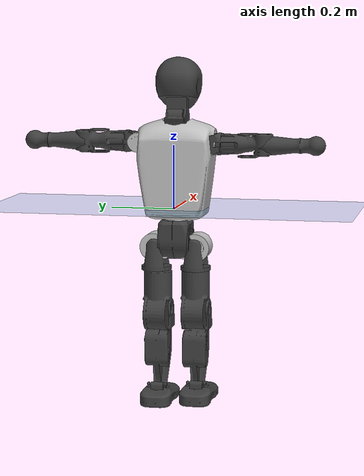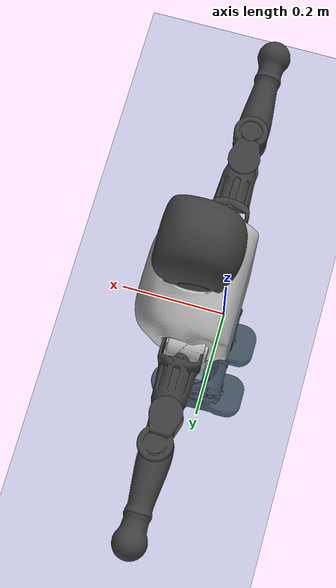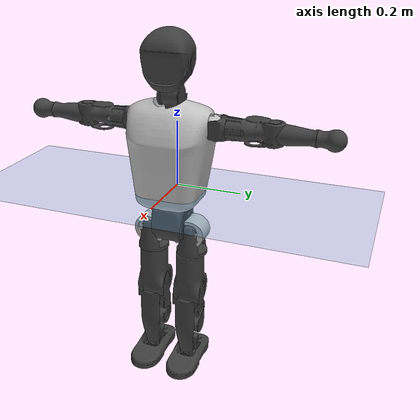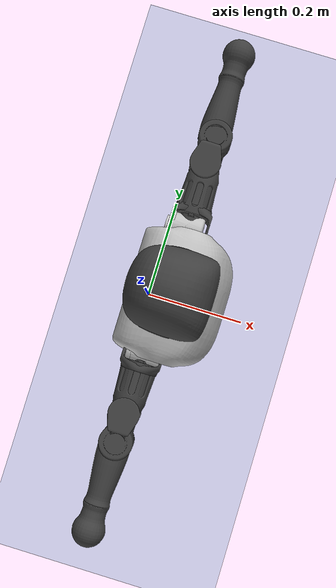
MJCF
<mujoco model="T1">
  <compiler angle="radian" assetdir="assets" balanceinertia="true" inertiafromgeom="false"/>

  <option timestep="0.005" density="1.2" viscosity="2e-05"/>

  <size nkey="1"/>

  <visual>
    <quality shadowsize="8192"/>
    <map shadowclip="0.5"/>
  </visual>

  <default>
    <default class="/">
      <joint armature="0.01" damping="0.01" frictionloss="0.1"/>
      <geom contype="0" conaffinity="0" group="1" solref="-1000 -80"/>
      <site size="0.01 0.005 0.005" group="5"/>
      <general forcelimited="true" biastype="affine" gainprm="25" biasprm="0 -25 -0.6"/>
      <default class="t1">
        <geom rgba="0.25 0.25 0.25 1"/>
        <default class="visual">
          <geom type="mesh" group="2"/>
        </default>
        <default class="collision">
          <geom group="3"/>
        </default>
        <default class="foot">
          <geom size="0.1115 0.05 0.015" type="box" condim="6" group="4" priority="1" solimp="0.015 1 0.015"/>
        </default>
        <default class="reward_collision_sphere">
          <geom group="5" rgba="1 0 0 1"/>
        </default>
      </default>
    </default>
  </default>

  <asset>
    <texture type="skybox" colorspace="auto" name="//unnamed_texture_0" builtin="gradient" rgb1="0.95 0.95 0.95" rgb2="0.95 0.95 0.95" width="100" height="600"/>
    <texture type="2d" colorspace="auto" name="texplane" builtin="checker" rgb1="0.345 0.575 0.748" rgb2="0.345 0.575 0.748" markrgb="1 1 1" width="512" height="512"/>
    <material name="MatPlane" class="/" texture="texplane" texuniform="true" texrepeat="2 2" specular="0.9"/>
    <mesh name="Trunk" class="/" file="Trunk.stl"/>
    <mesh name="H1" class="/" file="H1.stl"/>
    <mesh name="H2" class="/" file="H2.stl"/>
    <mesh name="AL1" class="/" file="AL1.stl"/>
    <mesh name="AL2" class="/" file="AL2.stl"/>
    <mesh name="AL3" class="/" file="AL3.stl"/>
    <mesh name="left_hand_link" class="/" file="left_hand_link.stl"/>
    <mesh name="AR1" class="/" file="AR1.stl"/>
    <mesh name="AR2" class="/" file="AR2.stl"/>
    <mesh name="AR3" class="/" file="AR3.stl"/>
    <mesh name="right_hand_link" class="/" file="right_hand_link.stl"/>
    <mesh name="Waist" class="/" file="Waist.stl"/>
    <mesh name="Hip_Pitch_Left" class="/" file="Hip_Pitch_Left.stl"/>
    <mesh name="Hip_Roll_Left" class="/" file="Hip_Roll_Left.stl"/>
    <mesh name="Hip_Yaw_Left" class="/" file="Hip_Yaw_Left.stl"/>
    <mesh name="Shank_Left" class="/" file="Shank_Left.stl"/>
    <mesh name="Ankle_Cross_Left" class="/" file="Ankle_Cross_Left.stl"/>
    <mesh name="left_foot_link" class="/" file="left_foot_link.stl"/>
    <mesh name="Hip_Pitch_Right" class="/" file="Hip_Pitch_Right.stl"/>
    <mesh name="Hip_Roll_Right" class="/" file="Hip_Roll_Right.stl"/>
    <mesh name="Hip_Yaw_Right" class="/" file="Hip_Yaw_Right.stl"/>
    <mesh name="Shank_Right" class="/" file="Shank_Right.stl"/>
    <mesh name="Ankle_Cross_Right" class="/" file="Ankle_Cross_Right.stl"/>
    <mesh name="right_foot_link" class="/" file="right_foot_link.stl"/>
  </asset>

  <worldbody>
    <geom name="floor" class="/" size="100 100 0.125" type="plane" group="0" material="MatPlane"/>
    <light name="toplight_shadow" class="/" pos="0 0 5" dir="0.0990148 0.0990148 -0.990148" type="directional" ambient="0.04 0.04 0.04" diffuse="0.55 0.55 0.55" specular="0.12 0.12 0.12"/>
    <light name="toplight_fill" class="/" pos="0 0 5" dir="0.0990148 0.0990148 -0.990148" type="directional" castshadow="false" ambient="0.04 0.04 0.04" diffuse="0.3 0.3 0.3" specular="0.08 0.08 0.08"/>
    <body name="trunk" childclass="t1" pos="-0.00112251 -0.000508168 -0.000209507" quat="0.999998 -0.00104567 -0.00153955 -0.00118371">
      <inertial pos="0.0387944 0.00233076 0.0956495" quat="0.999924 -0.000866108 -0.00985887 -0.00731524" mass="5.05116" diaginertia="0.0122879 0.00896707 0.0394438"/>
      <joint name="//unnamed_joint_0" type="free" armature="0" damping="0" frictionloss="0"/>
      <geom name="//unnamed_geom_1" class="visual" rgba="0.76 0.76 0.76 1" mesh="Trunk"/>
      <geom name="//unnamed_geom_2" class="collision" size="0.0559548 0.0746065 0.11191" pos="0.0402694 0 0.110136" type="box"/>
      <geom name="//unnamed_geom_3" class="reward_collision_sphere" size="0.0857974" pos="0.0402694 0 0.0917798"/>
      <geom name="//unnamed_geom_4" class="reward_collision_sphere" size="0.011191" pos="0.0402694 0.0551854 0"/>
      <geom name="//unnamed_geom_5" class="reward_collision_sphere" size="0.011191" pos="0.0402694 -0.0551854 0"/>
      <geom name="//unnamed_geom_6" class="reward_collision_sphere" size="0.011191" pos="0.0402694 0.0694687 0.165204"/>
      <geom name="//unnamed_geom_7" class="reward_collision_sphere" size="0.011191" pos="0.0402694 -0.0694687 0.165204"/>
      <site name="imu" pos="-0.00637268 0.0119923 0.00649741" size="0.00746065"/>
      <camera name="track" pos="0 -1.29848 0" quat="0.707107 0.707107 0 0" mode="trackcom"/>
      <camera name="ego_camera" pos="0.081881 0 0.385475" quat="-0.5 -0.5 0.5 0.5"/>
      <body name="H1" pos="0.0393843 0.000446332 0.225832" quat="1 -5.72829e-05 0.000529508 -0.00029309">
        <inertial pos="-0.000933033 -0.00623685 0.0535232" quat="0.760806 -0.0309679 -0.00856868 0.648183" mass="0.194674" diaginertia="3.49034e-05 2.83735e-05 0.000106554"/>
        <joint name="AAHead_yaw" pos="0 0 0" axis="-0.0116231 0.0181438 0.999768" range="-1.61063 1.52631" armature="0.00768383" damping="0.0119205" frictionloss="0.0775557"/>
        <geom name="//unnamed_geom_8" class="visual" mesh="H1"/>
        <body name="H2" pos="-0.00198763 -0.00461813 0.0586705" quat="0.999999 -0.000943259 0.000903733 0.000190919">
          <inertial pos="0.00103729 -0.0032087 0.0898542" quat="0.987026 0.109908 -0.0752391 -0.0896597" mass="0.253875" diaginertia="0.000260077 0.000222973 0.00109098"/>
          <joint name="Head_pitch" pos="0 0 0" axis="-0.0057251 -0.99998 0.00254861" range="-1.22942 0.345047" armature="0.00919986" damping="0.00271524" frictionloss="0.0510672"/>
          <geom name="//unnamed_geom_9" class="visual" mesh="H2"/>
          <geom name="//unnamed_geom_10" class="collision" size="0.0596852" pos="0.00671156 0 0.100958"/>
          <geom name="//unnamed_geom_11" class="reward_collision_sphere" size="0.0671458" pos="0.0134231 0 0.0917798"/>
        </body>
      </body>
      <body name="AL1" pos="0.0388076 0.0749112 0.205983" quat="1 -0.000244057 0.000476359 0.000132619">
        <inertial pos="0.0040299 0.0311374 -0.00338978" quat="0.503281 0.50124 -0.507131 0.488145" mass="0.213698" diaginertia="0.000179837 0.000145216 0.00018928"/>
        <joint name="Left_Shoulder_Pitch" pos="0 0 0" axis="0.0191445 0.999716 -0.0142056" stiffness="0.00829516" range="-3.3062 1.21258" armature="0.00655202" damping="0.00605739" frictionloss="0.0728255"/>
        <geom name="//unnamed_geom_12" class="visual" rgba="0.76 0.76 0.76 1" mesh="AL1"/>
        <body name="AL2" pos="0.00481663 0.0355889 0.00130535" quat="1 -1.38932e-06 7.5645e-06 -3.24335e-05">
          <inertial pos="0.00295314 0.0243309 0.00300471" quat="0.492785 0.505881 -0.483121 0.517534" mass="0.0705188" diaginertia="5.50702e-05 3.99045e-05 0.000118257"/>
          <joint name="Left_Shoulder_Roll" pos="0 0 0" axis="-0.99999 -0.00102333 -0.00427254" range="-1.58451 1.78823" armature="0.00755618" damping="0.00780833" frictionloss="0.0764631"/>
          <geom name="//unnamed_geom_13" class="visual" mesh="AL2"/>
          <body name="AL3" pos="-0.000668044 0.0393998 0.00122189" quat="1 -0.000427823 0.000121435 -0.000316251">
            <inertial pos="-4.47518e-05 0.0548248 0.00115609" quat="0.719785 0.694024 -0.0124006 0.00927116" mass="0.409141" diaginertia="0.00171256 0.00141988 0.000422635"/>
            <joint name="Left_Elbow_Pitch" pos="0 0 0" axis="0.0001086 -0.999985 0.00553702" range="-2.31232 2.21793" armature="0.00727104" damping="0" frictionloss="0.0550162"/>
            <geom name="//unnamed_geom_14" class="visual" mesh="AL3"/>
            <geom name="//unnamed_geom_15" class="collision" size="0.0223819 0.0559548" pos="0 0.032462 0" quat="0.707105 0.707108 0 0" type="cylinder"/>
            <geom name="//unnamed_geom_16" class="reward_collision_sphere" size="0.0268583"/>
            <body name="left_hand_link" pos="-0.00342528 0.0947701 -0.000762094" quat="0.999999 -9.30727e-05 -0.00101168 -0.000588918">
              <inertial pos="-0.00366749 0.0724362 0.00366291" quat="0.713383 0.700752 0.00432169 -0.00337143" mass="0.136356" diaginertia="0.00112571 0.000898236 0.000135776"/>
              <joint name="Left_Elbow_Yaw" pos="0 0 0" axis="0.00225399 0.00700609 0.999973" range="-2.44911 -0.0481426" armature="0.00719965" damping="0.0119579" frictionloss="0.0738205"/>
              <geom name="//unnamed_geom_17" class="visual" mesh="left_hand_link"/>
              <geom name="//unnamed_geom_18" class="collision" size="0.0223819 0.0652806" pos="0 0.0844012 0" quat="0.707105 0.707108 0 0" type="cylinder"/>
              <geom name="//unnamed_geom_19" class="reward_collision_sphere" size="0.0373032"/>
              <geom name="//unnamed_geom_20" class="reward_collision_sphere" size="0.0261123" pos="0 0.0714164 0"/>
              <geom name="//unnamed_geom_21" class="reward_collision_sphere" size="0.0261123" pos="0 0.139587 0"/>
            </body>
          </body>
        </body>
      </body>
      <body name="AR1" pos="0.0348589 -0.0638477 0.199201" quat="0.999996 -0.0021464 -0.000969219 -0.00180911">
        <inertial pos="-0.000634817 -0.0307545 0.00115312" quat="0.503867 0.495952 -0.50402 0.496098" mass="0.205766" diaginertia="0.00017925 0.000137382 0.000180561"/>
        <joint name="Right_Shoulder_Pitch" pos="0 0 0" axis="0.0144195 -0.999895 0.00136354" range="-1.23616 3.29332" armature="0.00677967" damping="0" frictionloss="0.070762"/>
        <geom name="//unnamed_geom_22" class="visual" rgba="0.76 0.76 0.76 1" mesh="AR1"/>
        <body name="AR2" pos="-0.00105729 -0.0269058 0.00464292" quat="0.999999 0.000368525 -0.000759581 0.00100443">
          <inertial pos="0.00097558 -0.0232962 -0.000683757" quat="0.510251 0.483302 -0.514249 0.491539" mass="0.067589" diaginertia="5.52094e-05 4.0618e-05 0.000117759"/>
          <joint name="Right_Shoulder_Roll" pos="0 0 0" axis="-0.999851 -0.0172061 -0.0012114" stiffness="0.00105364" range="-1.75425 1.55836" armature="0.00756426" damping="0.0176863" frictionloss="0.0661888"/>
          <geom name="//unnamed_geom_23" class="visual" mesh="AR2"/>
          <body name="AR3" pos="-4.55024e-05 -0.0394366 -0.000665253" quat="0.999998 -0.0015138 -0.00029746 0.0007943">
            <inertial pos="-0.00636393 -0.0540826 0.00174351" quat="0.703184 0.710933 0.00983687 0.00327262" mass="0.417112" diaginertia="0.00166216 0.00134423 0.000374652"/>
            <joint name="Right_Elbow_Pitch" pos="0 0 0" axis="-0.000341199 1 0.000288044" range="-2.29926 2.40302" armature="0.00736503" damping="0.00497131" frictionloss="0.0768413"/>
            <geom name="//unnamed_geom_24" class="visual" mesh="AR3"/>
            <geom name="//unnamed_geom_25" class="collision" size="0.0223819 0.0559548" pos="0 -0.032462 0" quat="0.707105 0.707108 0 0" type="cylinder"/>
            <geom name="//unnamed_geom_26" class="reward_collision_sphere" size="0.0268583"/>
            <body name="right_hand_link" pos="-0.00120595 -0.0945917 -0.00397446" quat="0.999999 -0.00111297 0.000811961 9.18727e-05">
              <inertial pos="-0.00538338 -0.0692572 0.00443265" quat="0.705128 0.709076 -0.00127138 0.00205093" mass="0.149789" diaginertia="0.00128973 0.00101698 0.000141885"/>
              <joint name="Right_Elbow_Yaw" pos="0 0 0" axis="0.00721483 0.00632096 0.999954" range="0.00632256 2.50984" armature="0.00692734" damping="0.0158397" frictionloss="0.0716844"/>
              <geom name="//unnamed_geom_27" class="visual" mesh="right_hand_link"/>
              <geom name="//unnamed_geom_28" class="collision" size="0.0223819 0.0652806" pos="0 -0.0844012 0" quat="0.707105 0.707108 0 0" type="cylinder"/>
              <geom name="//unnamed_geom_29" class="reward_collision_sphere" size="0.0373032"/>
              <geom name="//unnamed_geom_30" class="reward_collision_sphere" size="0.0261123" pos="0 -0.0714164 0"/>
              <geom name="//unnamed_geom_31" class="reward_collision_sphere" size="0.0261123" pos="0 -0.139587 0"/>
            </body>
          </body>
        </body>
      </body>
      <body name="Waist" pos="0.0464306 0.00356739 -0.105383" quat="1 -6.66873e-07 7.73679e-06 1.0284e-05">
        <inertial pos="0.00525254 -0.00247686 0.00462001" quat="0.98445 -0.00212379 -0.175611 -0.0037492" mass="1.11687" diaginertia="0.000716204 0.000614647 0.00318754"/>
        <joint name="Waist" pos="0 0 0" axis="0.00597731 -0.00658044 0.99996" range="-1.58761 1.54476" armature="0.0081383" damping="0.0299694" frictionloss="0.0739108"/>
        <geom name="//unnamed_geom_32" class="visual" mesh="Waist"/>
        <body name="Hip_Pitch_Left" pos="7.3743e-05 0.06623 0.000287859" quat="1 -0.000209201 1.05773e-05 0.000111236">
          <inertial pos="-0.000234367 -0.0034656 -0.0128167" quat="0.973484 0.227896 0.0197852 0.000467523" mass="0.429812" diaginertia="0.000242885 0.000167484 0.000805201"/>
          <joint name="Left_Hip_Pitch" pos="0 0 0" axis="0.00440255 0.99998 0.00456703" range="-1.75446 1.50318" armature="0.00662194" damping="0.0151005" frictionloss="0.0758503"/>
          <geom name="//unnamed_geom_33" class="visual" rgba="0.76 0.76 0.76 1" mesh="Hip_Pitch_Left"/>
          <body name="Hip_Roll_Left" pos="-0.00424488 -0.00397255 -0.0174108" quat="0.999999 0.000566678 0.000698143 0.00080511">
            <inertial pos="-0.00139513 -0.00072122 -0.0463816" quat="0.702108 -0.0147673 -0.00703044 0.711883" mass="0.154649" diaginertia="0.000219715 0.000174748 0.000339092"/>
            <joint name="Left_Hip_Roll" pos="0 0 0" axis="-0.99998 -0.0030364 -0.00554739" stiffness="0.0184883" range="-1.59302 0.11239" armature="0.00845822" damping="0.0162296" frictionloss="0.0826821"/>
            <geom name="//unnamed_geom_34" class="visual" mesh="Hip_Roll_Left"/>
            <geom name="//unnamed_geom_35" class="reward_collision_sphere" size="0.0410335"/>
            <body name="Hip_Yaw_Left" pos="-1.09335e-05 -0.00512968 -0.0823106" quat="1 -0.000225571 0.000312362 -0.000481895">
              <inertial pos="-0.00492833 -0.000684751 -0.0801644" quat="0.696991 -0.0252803 -0.017863 0.716412" mass="0.93214" diaginertia="0.00361169 0.00312596 0.00171132"/>
              <joint name="Left_Hip_Yaw" pos="0 0 0" axis="0.00248485 0.00251682 -0.999994" range="-1.07014 0.878284" armature="0.00738492" damping="0.0404674" frictionloss="0.0718911"/>
              <geom name="//unnamed_geom_36" class="visual" mesh="Hip_Yaw_Left"/>
              <geom name="//unnamed_geom_37" class="collision" size="0.0373032 0.0596852" type="cylinder"/>
              <body name="Shank_Left" pos="-0.00788246 -0.00350368 -0.118982" quat="1 -9.4106e-05 -0.000174658 4.77264e-06">
                <inertial pos="-0.00403987 0.000944774 -0.111176" quat="0.996807 -0.00538553 -0.0273675 0.0748199" mass="0.690892" diaginertia="0.00458596 0.00394671 0.00123226"/>
                <joint name="Left_Knee_Pitch" pos="0 0 0" axis="-0.0124466 0.999922 -0.000572576" range="-0.0012885 2.32341" armature="0.00768737" damping="0" frictionloss="0.0667685"/>
                <geom name="//unnamed_geom_38" class="visual" mesh="Shank_Left"/>
                <geom name="//unnamed_geom_39" class="collision" size="0.0373032 0.0559548" pos="0 0 -0.110136" type="cylinder"/>
                <geom name="//unnamed_geom_40" class="reward_collision_sphere" size="0.0484942"/>
                <body name="Ankle_Cross_Left" pos="-0.00312437 -0.00340098 -0.254632" quat="0.999999 0.00085013 0.000435877 0.00088841">
                  <inertial pos="0.00194087 -0.00436784 -0.00800406" quat="0.445823 0.551473 0.550109 0.44102" mass="0.0307253" diaginertia="3.92789e-06 3.1148e-06 7.36223e-06"/>
                  <joint name="Left_Ankle_Pitch" pos="0 0 0" axis="-0.0131922 0.999913 0.00048724" stiffness="0.00139616" range="-0.85595 0.3971" armature="0.00891356" damping="0.0152865" frictionloss="0.074138"/>
                  <geom name="//unnamed_geom_41" class="visual" mesh="Ankle_Cross_Left"/>
                  <body name="left_foot_link" pos="-0.00231934 -0.000508763 -0.0150999" quat="0.999996 0.000596628 -0.000964874 0.0024552">
                    <inertial pos="0.004128 0.000285557 -0.00980628" quat="-0.000413037 0.621281 6.12649e-05 0.783588" mass="0.280839" diaginertia="0.000359782 0.000277863 0.00135208"/>
                    <joint name="Left_Ankle_Roll" pos="0 0 0" axis="-0.999983 0.00167102 -0.0055389" stiffness="0.0139646" range="-0.363858 0.53066" armature="0.00751182" damping="0" frictionloss="0.0903996"/>
                    <geom name="//unnamed_geom_42" class="visual" mesh="left_foot_link"/>
                    <geom name="left_foot" class="foot" size="0.0944541 0.0378539 0.0101284" pos="0.00671156 0 -0.013767"/>
                    <geom name="//unnamed_geom_44" class="reward_collision_sphere" size="0.0387954" pos="0.00671156 0 -0.013767"/>
                    <geom name="//unnamed_geom_45" class="reward_collision_sphere" size="0.0223819" pos="0.0637598 -0.0149325 -0.013767"/>
                    <geom name="//unnamed_geom_46" class="reward_collision_sphere" size="0.0223819" pos="-0.0469809 -0.0149325 -0.013767"/>
                    <site name="left_foot" class="foot" pos="0.00671156 0 -0.013767" size="0.00746065"/>
                  </body>
                </body>
              </body>
            </body>
          </body>
        </body>
        <body name="Hip_Pitch_Right" pos="0.00558563 -0.0672905 -0.000456085" quat="0.999998 0.00103052 -8.85866e-05 -0.00149196">
          <inertial pos="0.00127837 0.00676335 -0.0169146" quat="0.973948 -0.225435 0.0213166 -0.0122513" mass="0.426753" diaginertia="0.000235733 0.000168704 0.000766944"/>
          <joint name="Right_Hip_Pitch" pos="0 0 0" axis="0.00471353 -0.999974 0.00538982" range="-1.60116 1.82965" armature="0.00699082" damping="0.0133165" frictionloss="0.0701361"/>
          <geom name="//unnamed_geom_47" class="visual" rgba="0.76 0.76 0.76 1" mesh="Hip_Pitch_Right"/>
          <body name="Hip_Roll_Right" pos="-0.00470166 0.00328688 -0.0159062" quat="1 -0.000152832 -2.88235e-05 0.000149336">
            <inertial pos="0.00225559 0.00127746 -0.0506854" quat="0.71018 -0.010288 -0.0049294 0.703927" mass="0.150752" diaginertia="0.000236811 0.000170155 0.000335124"/>
            <joint name="Right_Hip_Roll" pos="0 0 0" axis="-0.999967 0.00795217 0.00191119" range="-0.198742 1.68096" armature="0.0084807" damping="0.0285275" frictionloss="0.093045"/>
            <geom name="//unnamed_geom_48" class="visual" mesh="Hip_Roll_Right"/>
            <geom name="//unnamed_geom_49" class="reward_collision_sphere" size="0.0410335"/>
            <body name="Hip_Yaw_Right" pos="-0.00414474 -0.000912892 -0.0766059" quat="1 -0.000175247 -0.000510847 0.000653935">
              <inertial pos="-0.00709478 0.000830169 -0.0829194" quat="0.727541 -0.0445187 -0.0128978 0.684497" mass="0.912677" diaginertia="0.00373236 0.00290416 0.00179348"/>
              <joint name="Right_Hip_Yaw" pos="0 0 0" axis="0.022381 0.0208462 -0.999532" range="-1.00593 0.995494" armature="0.00835476" damping="0" frictionloss="0.0815489"/>
              <geom name="//unnamed_geom_50" class="visual" mesh="Hip_Yaw_Right"/>
              <geom name="//unnamed_geom_51" class="collision" size="0.0373032 0.0596852" type="cylinder"/>
              <body name="Shank_Right" pos="-0.0137233 -0.00440968 -0.123418" quat="1 0.000111407 0.000213521 1.63977e-06">
                <inertial pos="-0.00401564 0.00227662 -0.110792" quat="0.998529 0.0190612 -0.034277 -0.0374419" mass="0.720812" diaginertia="0.00456519 0.00398565 0.00124969"/>
                <joint name="Right_Knee_Pitch" pos="0 0 0" axis="0.0181123 -0.999799 -0.00864394" stiffness="0.0247062" range="-2.32388 -0.0232824" armature="0.00732618" damping="0" frictionloss="0.0692216"/>
                <geom name="//unnamed_geom_52" class="visual" mesh="Shank_Right"/>
                <geom name="//unnamed_geom_53" class="collision" size="0.0373032 0.0559548" pos="0 0 -0.110136" type="cylinder"/>
                <geom name="//unnamed_geom_54" class="reward_collision_sphere" size="0.0484942"/>
                <body name="Ankle_Cross_Right" pos="0.00343488 -0.00361596 -0.252722" quat="0.999999 0.00144685 -0.000670662 0.000483007">
                  <inertial pos="-0.00471068 -0.00225114 -0.00794688" quat="0.442052 0.551744 0.551361 0.442911" mass="0.0300637" diaginertia="4.2802e-06 2.98779e-06 7.58471e-06"/>
                  <joint name="Right_Ankle_Pitch" pos="0 0 0" axis="0.000971304 -0.999977 -0.00671316" stiffness="0.00348982" range="-0.221944 0.858646" armature="0.00823103" damping="0.00514304" frictionloss="0.0656775"/>
                  <geom name="//unnamed_geom_55" class="visual" mesh="Ankle_Cross_Right"/>
                  <body name="right_foot_link" pos="-0.00150647 -0.00413424 -0.0109202" quat="1 0.000210991 0.00010917 0.000143797">
                    <inertial pos="-4.02237e-05 -0.00232939 -0.00904254" quat="0.000206762 0.618446 3.47183e-05 0.785827" mass="0.252275" diaginertia="0.000344358 0.000263363 0.00140655"/>
                    <joint name="Right_Ankle_Roll" pos="0 0 0" axis="-0.999942 0.00250443 0.0104813" range="-0.487987 0.440361" armature="0.00801842" damping="0.00850937" frictionloss="0.0944519"/>
                    <geom name="//unnamed_geom_56" class="visual" mesh="right_foot_link"/>
                    <geom name="right_foot" class="foot" size="0.0939732 0.0421129 0.0105389" pos="0.00671156 0 -0.013767"/>
                    <geom name="//unnamed_geom_58" class="reward_collision_sphere" size="0.0298426"/>
                    <geom name="//unnamed_geom_59" class="reward_collision_sphere" size="0.0223819" pos="0.00671156 0 -0.013767"/>
                    <geom name="//unnamed_geom_60" class="reward_collision_sphere" size="0.0223819" pos="0.0637598 0.0149325 -0.013767"/>
                    <geom name="//unnamed_geom_61" class="reward_collision_sphere" size="0.0223819" pos="-0.0469809 0.0149325 -0.013767"/>
                    <site name="right_foot" class="foot" pos="0.00671156 0 -0.013767" size="0.00746065"/>
                  </body>
                </body>
              </body>
            </body>
          </body>
        </body>
      </body>
    </body>
  </worldbody>

  <contact>
    <pair class="/" geom1="floor" geom2="left_foot" name="//unnamed_contact_0"/>
    <pair class="/" geom1="floor" geom2="right_foot" name="//unnamed_contact_1"/>
  </contact>

  <actuator>
    <general name="AAHead_yaw" class="/" joint="AAHead_yaw" forcerange="-4.83972 4.83972" gainprm="21.2395" biasprm="0 -21.2395 -0.447297"/>
    <general name="Head_pitch" class="/" joint="Head_pitch" forcerange="-5.62003 5.62003" gainprm="21.2395" biasprm="0 -21.2395 -0.447297"/>
    <general name="Left_Shoulder_Pitch" class="/" joint="Left_Shoulder_Pitch" forcerange="-16.6697 16.6697" gainprm="21.2395" biasprm="0 -21.2395 -0.447297"/>
    <general name="Left_Shoulder_Roll" class="/" joint="Left_Shoulder_Roll" forcerange="-13.7103 13.7103" gainprm="21.2395" biasprm="0 -21.2395 -0.447297"/>
    <general name="Left_Elbow_Pitch" class="/" joint="Left_Elbow_Pitch" forcerange="-13.1723 13.1723" gainprm="21.2395" biasprm="0 -21.2395 -0.447297"/>
    <general name="Left_Elbow_Yaw" class="/" joint="Left_Elbow_Yaw" forcerange="-13.4496 13.4496" gainprm="21.2395" biasprm="0 -21.2395 -0.447297"/>
    <general name="Right_Shoulder_Pitch" class="/" joint="Right_Shoulder_Pitch" forcerange="-12.336 12.336" gainprm="21.2395" biasprm="0 -21.2395 -0.447297"/>
    <general name="Right_Shoulder_Roll" class="/" joint="Right_Shoulder_Roll" forcerange="-13.7538 13.7538" gainprm="21.2395" biasprm="0 -21.2395 -0.447297"/>
    <general name="Right_Elbow_Pitch" class="/" joint="Right_Elbow_Pitch" forcerange="-13.4338 13.4338" gainprm="21.2395" biasprm="0 -21.2395 -0.447297"/>
    <general name="Right_Elbow_Yaw" class="/" joint="Right_Elbow_Yaw" forcerange="-13.3761 13.3761" gainprm="21.2395" biasprm="0 -21.2395 -0.447297"/>
    <general name="Waist" class="/" joint="Waist" forcerange="-22.3279 22.3279" gainprm="21.2395" biasprm="0 -21.2395 -0.447297"/>
    <general name="Left_Hip_Pitch" class="/" joint="Left_Hip_Pitch" forcerange="-31.4185 31.4185" gainprm="21.2395" biasprm="0 -21.2395 -0.447297"/>
    <general name="Left_Hip_Roll" class="/" joint="Left_Hip_Roll" forcerange="-22.0411 22.0411" gainprm="21.2395" biasprm="0 -21.2395 -0.447297"/>
    <general name="Left_Hip_Yaw" class="/" joint="Left_Hip_Yaw" forcerange="-22.1251 22.1251" gainprm="21.2395" biasprm="0 -21.2395 -0.447297"/>
    <general name="Left_Knee_Pitch" class="/" joint="Left_Knee_Pitch" forcerange="-46.6192 46.6192" gainprm="21.2395" biasprm="0 -21.2395 -0.447297"/>
    <general name="Left_Ankle_Pitch" class="/" joint="Left_Ankle_Pitch" forcerange="-12.1515 12.1515" gainprm="21.2395" biasprm="0 -21.2395 -0.447297"/>
    <general name="Left_Ankle_Roll" class="/" joint="Left_Ankle_Roll" forcerange="-12.7707 12.7707" gainprm="21.2395" biasprm="0 -21.2395 -0.447297"/>
    <general name="Right_Hip_Pitch" class="/" joint="Right_Hip_Pitch" forcerange="-34.8542 34.8542" gainprm="21.2395" biasprm="0 -21.2395 -0.447297"/>
    <general name="Right_Hip_Roll" class="/" joint="Right_Hip_Roll" forcerange="-19.155 19.155" gainprm="21.2395" biasprm="0 -21.2395 -0.447297"/>
    <general name="Right_Hip_Yaw" class="/" joint="Right_Hip_Yaw" forcerange="-24.0206 24.0206" gainprm="21.2395" biasprm="0 -21.2395 -0.447297"/>
    <general name="Right_Knee_Pitch" class="/" joint="Right_Knee_Pitch" forcerange="-46.424 46.424" gainprm="21.2395" biasprm="0 -21.2395 -0.447297"/>
    <general name="Right_Ankle_Pitch" class="/" joint="Right_Ankle_Pitch" forcerange="-14.3342 14.3342" gainprm="21.2395" biasprm="0 -21.2395 -0.447297"/>
    <general name="Right_Ankle_Roll" class="/" joint="Right_Ankle_Roll" forcerange="-9.98229 9.98229" gainprm="21.2395" biasprm="0 -21.2395 -0.447297"/>
  </actuator>

  <sensor>
    <gyro site="imu" name="imu_angular_velocity"/>
    <velocimeter site="imu" name="imu_linear_velocity"/>
    <framelinvel objtype="site" objname="left_foot" name="left_foot_global_linear_velocity"/>
    <framelinvel objtype="site" objname="right_foot" name="right_foot_global_linear_velocity"/>
  </sensor>

  <keyframe>
    <key name="home" qpos="0 0 0.6385 1 0 0 0 0 0 0 1.4 0 -0.4 0 -1.4 0 0.4 0 -0.4 0 0 0.8 -0.4 0 0.4 0 0 -0.8 0.4 0"/>
  </keyframe>
</mujoco>
